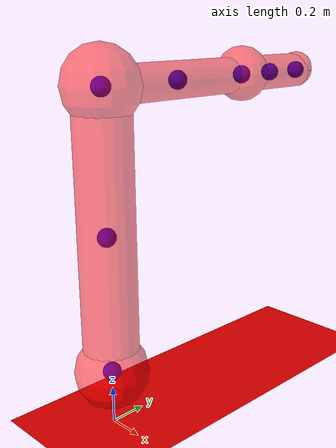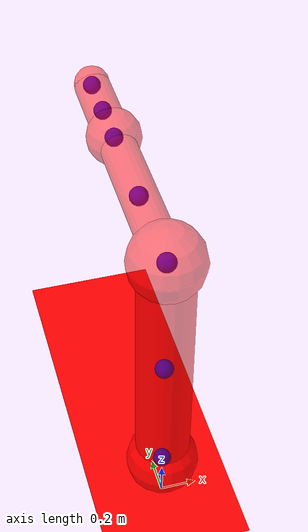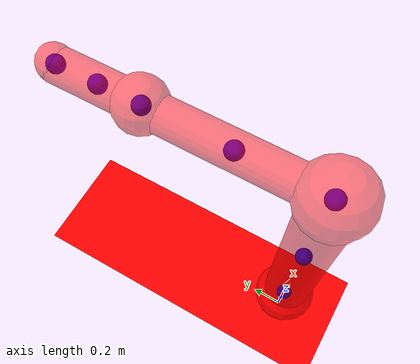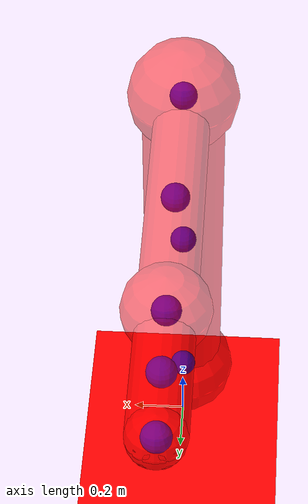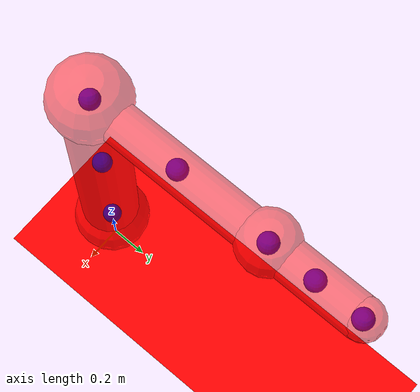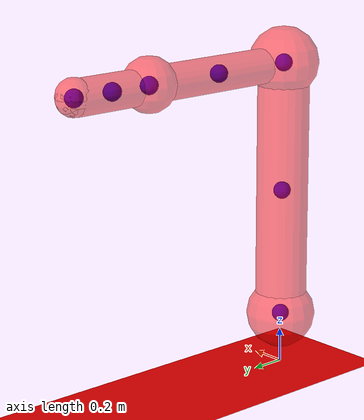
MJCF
<mujoco>
    <size njmax="3000" nconmax="1000"/>
    <option gravity="0 0 0" timestep="0.002"/>
    <default>
        <joint limited="false" damping="5000" range="-180 180" />
        <geom condim="6" size="0.032" rgba="1 0 0 0.5" type="capsule" density="0.01"/>
        <motor ctrllimited="true" ctrlrange="-1.0 1.0" gear="2000"/>
        <site size="0.05" type="sphere" rgba="0 0 1 1"/>
    </default>
    <worldbody>
        <geom name="floor" size="5 5 0.1" type="plane" condim="6"/>
        <camera name="fixedfar" mode="fixed" pos="10 0 5"/>
        <body name="robot" pos="0.0 0.0 0.0">
            <camera name="vision" pos="0 0 .5" xyaxes="0 -1 0 .4 0 1" fovy="90"/>
            <site name="robot" pos="0 0 0" rgba="1 0 0 0"/>

            <body name="link_1" pos="0.0 0.0 0.3">
                <joint type="hinge" axis="0 0 1" name="joint_1"/>
                <geom fromto="0.0 0.0 0.0 0.0 0.0 0.01" size="0.2" name="link_1"/>
                <site name="center_link_1" pos="0 0 0"/>

                <body name="link_2" pos="0.0 0.0 0.0">
                    <joint type="hinge" axis="1 0 0" name="joint_2"/>
                    <geom fromto="0.0 0.0 0.0 0.0 0.0 1.5" size="0.15" name="link_2"/>
                    <site name="center_link_2" pos="0 0 0.75" />

                    <body name="link_3" pos="0.0 0.0 1.5">
                        <joint type="hinge" axis="1 0 0" name="joint_3"/>
                        <geom fromto="0.0 0.0 0.0 0.0 0.0 0.01" size="0.2" name="link_3"/>
                        <site name="center_link_3" pos="0 0 0" />

                        <body name="link_4" pos="0.0 0.0 0.0">
                            <joint type="hinge" axis="0 1 0" name="joint_4" />
                            <geom fromto="0.0 0.0 0.0 0.0 1.0 0.0" size="0.1" name="link_4"/>
                            <site name="center_link_4" pos="0 0.5 0" />

                            <body name="link_5" pos="0.0 1.0 0.0">
                                <joint type="hinge" axis="1 0 0" name="joint_5"/>
                                <geom fromto="0.0 0.0 0.0 0.0 0.0 0.01" size="0.15" name="link_5"/>
                                <site name="center_link_5" pos="0 0 0" />

                                <body name="link_6" pos="0.0 0.0 0.0">
                                    <joint type="hinge" axis="0 1 0" name="joint_6"/>
                                    <geom fromto="0.0 0.0 0.0 0.0 0.5 0.0" size="0.1" name="link_6"/>
                                    <site name="center_link_6" pos="0 0.25 0" />

                                    <body name="link_7" pos="0.0 0.5 0.0">
                                        <geom fromto="0.0 0.0 0.0 0.0 0.0 0.01" size="0.1" name="link_7"/>
                                        <site name="center_link_7" pos="0 0 0" />
                                    </body>
                                </body>
                            </body>
                        </body>
                    </body>
                </body>
            </body>

        </body>
    </worldbody>

    <sensor>
        <jointpos joint="joint_1" name="jointpos_joint_1"/>
        <jointpos joint="joint_2" name="jointpos_joint_2"/>
        <jointpos joint="joint_3" name="jointpos_joint_3"/>
        <jointpos joint="joint_4" name="jointpos_joint_4"/>
        <jointpos joint="joint_5" name="jointpos_joint_5"/>
        <jointpos joint="joint_6" name="jointpos_joint_6"/>

        <jointvel joint="joint_1" name="jointvel_joint_1"/>
        <jointvel joint="joint_2" name="jointvel_joint_2"/>
        <jointvel joint="joint_3" name="jointvel_joint_3"/>
        <jointvel joint="joint_4" name="jointvel_joint_4"/>
        <jointvel joint="joint_5" name="jointvel_joint_5"/>
        <jointvel joint="joint_6" name="jointvel_joint_6"/>

        <!-- Used for observation -->
        <accelerometer site="robot" name="accelerometer"/>
        <velocimeter site="robot" name="velocimeter"/>
        <gyro site="robot" name="gyro"/>
        <magnetometer site="robot" name="magnetometer"/>

        <accelerometer site="center_link_1" name="accelerometer_link_1"/>
        <velocimeter site="center_link_1" name="velocimeter_link_1"/>
        <gyro site="center_link_1" name="gyro_link_1"/>
        <magnetometer site="center_link_1" name="magnetometer_link_1"/>

        <accelerometer site="center_link_2" name="accelerometer_link_2"/>
        <velocimeter site="center_link_2" name="velocimeter_link_2"/>
        <gyro site="center_link_2" name="gyro_link_2"/>
        <magnetometer site="center_link_2" name="magnetometer_link_2"/>

        <accelerometer site="center_link_3" name="accelerometer_link_3"/>
        <velocimeter site="center_link_3" name="velocimeter_link_3"/>
        <gyro site="center_link_3" name="gyro_link_3"/>
        <magnetometer site="center_link_3" name="magnetometer_link_3"/>

        <accelerometer site="center_link_4" name="accelerometer_link_4"/>
        <velocimeter site="center_link_4" name="velocimeter_link_4"/>
        <gyro site="center_link_4" name="gyro_link_4"/>
        <magnetometer site="center_link_4" name="magnetometer_link_4"/>

        <accelerometer site="center_link_5" name="accelerometer_link_5"/>
        <velocimeter site="center_link_5" name="velocimeter_link_5"/>
        <gyro site="center_link_5" name="gyro_link_5"/>
        <magnetometer site="center_link_5" name="magnetometer_link_5"/>

        <accelerometer site="center_link_6" name="accelerometer_link_6"/>
        <velocimeter site="center_link_6" name="velocimeter_link_6"/>
        <gyro site="center_link_6" name="gyro_link_6"/>
        <magnetometer site="center_link_6" name="magnetometer_link_6"/>

        <accelerometer site="center_link_7" name="accelerometer_link_7"/>
        <velocimeter site="center_link_7" name="velocimeter_link_7"/>
        <gyro site="center_link_7" name="gyro_link_7"/>
        <magnetometer site="center_link_7" name="magnetometer_link_7"/>

        <!-- Used for intrinsic constraints -->
        <subtreecom body="robot" name="subtreecom"/>
        <subtreelinvel body="robot" name="subtreelinvel"/>
        <subtreeangmom body="robot" name="subtreeangmom"/>

    </sensor>
    <actuator>
        <motor name="joint_1" joint="joint_1"/>
        <motor name="joint_2" joint="joint_2"/>
        <motor name="joint_3" joint="joint_3"/>
        <motor name="joint_4" joint="joint_4"/>
        <motor name="joint_5" joint="joint_5"/>
        <motor name="joint_6" joint="joint_6"/>
    </actuator>
</mujoco>
